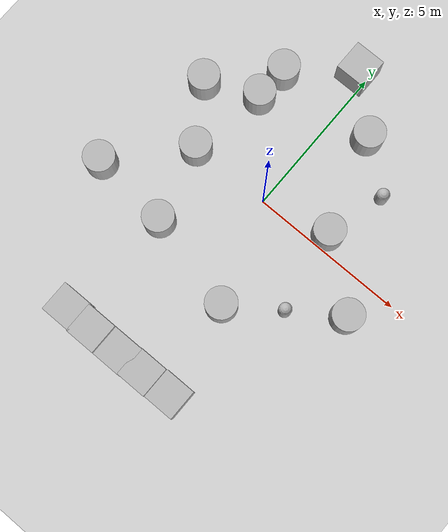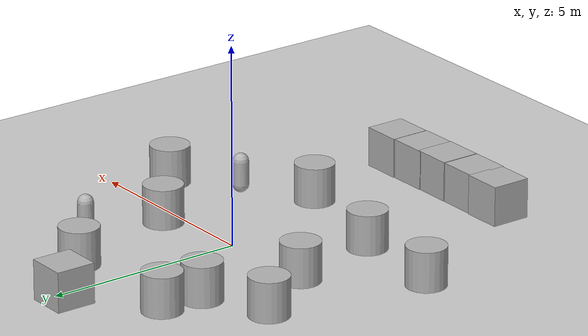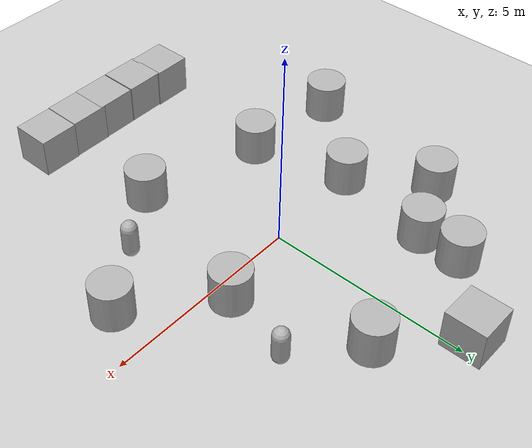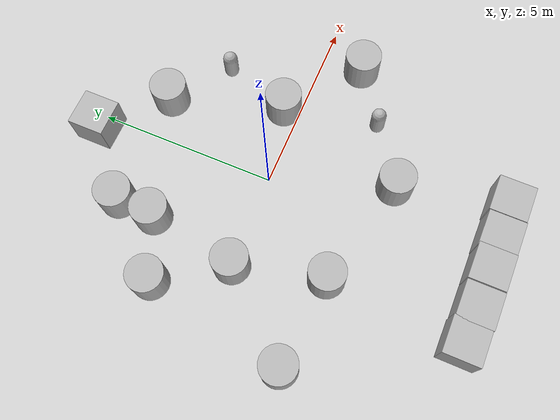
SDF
<sdf version='1.9'>
  <world name='empty'>
    <physics name='1ms' type='ignored'>
      <max_step_size>0.001</max_step_size>
      <real_time_factor>1</real_time_factor>
      <real_time_update_rate>1000</real_time_update_rate>
    </physics>
    <plugin name='gz::sim::systems::Physics' filename='ignition-gazebo-physics-system'/>
    <plugin name='gz::sim::systems::UserCommands' filename='ignition-gazebo-user-commands-system'/>
    <plugin name='gz::sim::systems::SceneBroadcaster' filename='ignition-gazebo-scene-broadcaster-system'/>
    <plugin name='gz::sim::systems::Contact' filename='ignition-gazebo-contact-system'/>
    <gravity>0 0 -9.8</gravity>
    <magnetic_field>6e-06 2.3e-05 -4.2e-05</magnetic_field>
    <atmosphere type='adiabatic'/>
    <scene>
      <ambient>0.4 0.4 0.4 1</ambient>
      <background>0.7 0.7 0.7 1</background>
      <shadows>true</shadows>
    </scene>
    <plugin filename="libignition-gazebo-sensors-system.so"
        name="ignition::gazebo::systems::Sensors">
  <render_engine>ogre2</render_engine>
</plugin>
    <model name='ground_plane'>
      <static>true</static>
      <link name='link'>
        <collision name='collision'>
          <geometry>
            <plane>
              <normal>0 0 1</normal>
              <size>100 100</size>
            </plane>
          </geometry>
          <surface>
            <friction>
              <ode/>
            </friction>
            <bounce/>
            <contact/>
          </surface>
        </collision>
        <visual name='visual'>
          <geometry>
            <plane>
              <normal>0 0 1</normal>
              <size>100 100</size>
            </plane>
          </geometry>
          <material>
            <ambient>0.8 0.8 0.8 1</ambient>
            <diffuse>0.8 0.8 0.8 1</diffuse>
            <specular>0.8 0.8 0.8 1</specular>
          </material>
        </visual>
        <pose>0 0 0 0 -0 0</pose>
        <inertial>
          <pose>0 0 0 0 -0 0</pose>
          <mass>1</mass>
          <inertia>
            <ixx>1</ixx>
            <ixy>0</ixy>
            <ixz>0</ixz>
            <iyy>1</iyy>
            <iyz>0</iyz>
            <izz>1</izz>
          </inertia>
        </inertial>
        <enable_wind>false</enable_wind>
      </link>
      <pose>0 0 0 0 -0 0</pose>
      <self_collide>false</self_collide>
    </model>
    <model name='cylinder'>
      <pose>1.19054 3.52569 0.5 0 -0 0</pose>
      <link name='cylinder_link'>
        <inertial>
          <inertia>
            <ixx>0.14580000000000001</ixx>
            <ixy>0</ixy>
            <ixz>0</ixz>
            <iyy>0.14580000000000001</iyy>
            <iyz>0</iyz>
            <izz>0.125</izz>
          </inertia>
          <mass>1</mass>
          <pose>0 0 0 0 -0 0</pose>
        </inertial>
        <collision name='cylinder_collision'>
          <geometry>
            <cylinder>
              <radius>0.5</radius>
              <length>1</length>
            </cylinder>
          </geometry>
          <surface>
            <friction>
              <ode/>
            </friction>
            <bounce/>
            <contact/>
          </surface>
        </collision>
        <visual name='cylinder_visual'>
          <geometry>
            <cylinder>
              <radius>0.5</radius>
              <length>1</length>
            </cylinder>
          </geometry>
          <material>
            <ambient>0.3 0.3 0.3 1</ambient>
            <diffuse>0.7 0.7 0.7 1</diffuse>
            <specular>1 1 1 1</specular>
          </material>
        </visual>
        <pose>0 0 0 0 -0 0</pose>
        <enable_wind>false</enable_wind>
      </link>
      <static>false</static>
      <self_collide>false</self_collide>
    </model>
    <model name='cylinder_0'>
      <pose>2.14112 0.465666 0.5 0 -0 0</pose>
      <link name='cylinder_link'>
        <inertial>
          <inertia>
            <ixx>0.14580000000000001</ixx>
            <ixy>0</ixy>
            <ixz>0</ixz>
            <iyy>0.14580000000000001</iyy>
            <iyz>0</iyz>
            <izz>0.125</izz>
          </inertia>
          <mass>1</mass>
          <pose>0 0 0 0 -0 0</pose>
        </inertial>
        <collision name='cylinder_collision'>
          <geometry>
            <cylinder>
              <radius>0.5</radius>
              <length>1</length>
            </cylinder>
          </geometry>
          <surface>
            <friction>
              <ode/>
            </friction>
            <bounce/>
            <contact/>
          </surface>
        </collision>
        <visual name='cylinder_visual'>
          <geometry>
            <cylinder>
              <radius>0.5</radius>
              <length>1</length>
            </cylinder>
          </geometry>
          <material>
            <ambient>0.3 0.3 0.3 1</ambient>
            <diffuse>0.7 0.7 0.7 1</diffuse>
            <specular>1 1 1 1</specular>
          </material>
        </visual>
        <pose>0 0 0 0 -0 0</pose>
        <enable_wind>false</enable_wind>
      </link>
      <static>false</static>
      <self_collide>false</self_collide>
    </model>
    <model name='cylinder_1'>
      <pose>1.09367 -3.24266 0.5 0 -0 0</pose>
      <link name='cylinder_link'>
        <inertial>
          <inertia>
            <ixx>0.14580000000000001</ixx>
            <ixy>0</ixy>
            <ixz>0</ixz>
            <iyy>0.14580000000000001</iyy>
            <iyz>0</iyz>
            <izz>0.125</izz>
          </inertia>
          <mass>1</mass>
          <pose>0 0 0 0 -0 0</pose>
        </inertial>
        <collision name='cylinder_collision'>
          <geometry>
            <cylinder>
              <radius>0.5</radius>
              <length>1</length>
            </cylinder>
          </geometry>
          <surface>
            <friction>
              <ode/>
            </friction>
            <bounce/>
            <contact/>
          </surface>
        </collision>
        <visual name='cylinder_visual'>
          <geometry>
            <cylinder>
              <radius>0.5</radius>
              <length>1</length>
            </cylinder>
          </geometry>
          <material>
            <ambient>0.3 0.3 0.3 1</ambient>
            <diffuse>0.7 0.7 0.7 1</diffuse>
            <specular>1 1 1 1</specular>
          </material>
        </visual>
        <pose>0 0 0 0 -0 0</pose>
        <enable_wind>false</enable_wind>
      </link>
      <static>false</static>
      <self_collide>false</self_collide>
    </model>
    <model name='cylinder_2'>
      <pose>-2.16518 2.41707 0.5 0 -0 0</pose>
      <link name='cylinder_link'>
        <inertial>
          <inertia>
            <ixx>0.14580000000000001</ixx>
            <ixy>0</ixy>
            <ixz>0</ixz>
            <iyy>0.14580000000000001</iyy>
            <iyz>0</iyz>
            <izz>0.125</izz>
          </inertia>
          <mass>1</mass>
          <pose>0 0 0 0 -0 0</pose>
        </inertial>
        <collision name='cylinder_collision'>
          <geometry>
            <cylinder>
              <radius>0.5</radius>
              <length>1</length>
            </cylinder>
          </geometry>
          <surface>
            <friction>
              <ode/>
            </friction>
            <bounce/>
            <contact/>
          </surface>
        </collision>
        <visual name='cylinder_visual'>
          <geometry>
            <cylinder>
              <radius>0.5</radius>
              <length>1</length>
            </cylinder>
          </geometry>
          <material>
            <ambient>0.3 0.3 0.3 1</ambient>
            <diffuse>0.7 0.7 0.7 1</diffuse>
            <specular>1 1 1 1</specular>
          </material>
        </visual>
        <pose>0 0 0 0 -0 0</pose>
        <enable_wind>false</enable_wind>
      </link>
      <static>false</static>
      <self_collide>false</self_collide>
    </model>
    <model name='cylinder_3'>
      <pose>-2.58643 -0.070747 0.5 0 -0 0</pose>
      <link name='cylinder_link'>
        <inertial>
          <inertia>
            <ixx>0.14580000000000001</ixx>
            <ixy>0</ixy>
            <ixz>0</ixz>
            <iyy>0.14580000000000001</iyy>
            <iyz>0</iyz>
            <izz>0.125</izz>
          </inertia>
          <mass>1</mass>
          <pose>0 0 0 0 -0 0</pose>
        </inertial>
        <collision name='cylinder_collision'>
          <geometry>
            <cylinder>
              <radius>0.5</radius>
              <length>1</length>
            </cylinder>
          </geometry>
          <surface>
            <friction>
              <ode/>
            </friction>
            <bounce/>
            <contact/>
          </surface>
        </collision>
        <visual name='cylinder_visual'>
          <geometry>
            <cylinder>
              <radius>0.5</radius>
              <length>1</length>
            </cylinder>
          </geometry>
          <material>
            <ambient>0.3 0.3 0.3 1</ambient>
            <diffuse>0.7 0.7 0.7 1</diffuse>
            <specular>1 1 1 1</specular>
          </material>
        </visual>
        <pose>0 0 0 0 -0 0</pose>
        <enable_wind>false</enable_wind>
      </link>
      <static>false</static>
      <self_collide>false</self_collide>
    </model>
    <model name='cylinder_4'>
      <pose>-1.98189 -2.47929 0.5 0 -0 0</pose>
      <link name='cylinder_link'>
        <inertial>
          <inertia>
            <ixx>0.14580000000000001</ixx>
            <ixy>0</ixy>
            <ixz>0</ixz>
            <iyy>0.14580000000000001</iyy>
            <iyz>0</iyz>
            <izz>0.125</izz>
          </inertia>
          <mass>1</mass>
          <pose>0 0 0 0 -0 0</pose>
        </inertial>
        <collision name='cylinder_collision'>
          <geometry>
            <cylinder>
              <radius>0.5</radius>
              <length>1</length>
            </cylinder>
          </geometry>
          <surface>
            <friction>
              <ode/>
            </friction>
            <bounce/>
            <contact/>
          </surface>
        </collision>
        <visual name='cylinder_visual'>
          <geometry>
            <cylinder>
              <radius>0.5</radius>
              <length>1</length>
            </cylinder>
          </geometry>
          <material>
            <ambient>0.3 0.3 0.3 1</ambient>
            <diffuse>0.7 0.7 0.7 1</diffuse>
            <specular>1 1 1 1</specular>
          </material>
        </visual>
        <pose>0 0 0 0 -0 0</pose>
        <enable_wind>false</enable_wind>
      </link>
      <static>false</static>
      <self_collide>false</self_collide>
    </model>
    <model name='box'>
      <pose>1.64385 -6.1858 0.5 0 -0 0</pose>
      <link name='box_link'>
        <inertial>
          <inertia>
            <ixx>0.16666</ixx>
            <ixy>0</ixy>
            <ixz>0</ixz>
            <iyy>0.16666</iyy>
            <iyz>0</iyz>
            <izz>0.16666</izz>
          </inertia>
          <mass>1</mass>
          <pose>0 0 0 0 -0 0</pose>
        </inertial>
        <collision name='box_collision'>
          <geometry>
            <box>
              <size>1 1 1</size>
            </box>
          </geometry>
          <surface>
            <friction>
              <ode/>
            </friction>
            <bounce/>
            <contact/>
          </surface>
        </collision>
        <visual name='box_visual'>
          <geometry>
            <box>
              <size>1 1 1</size>
            </box>
          </geometry>
          <material>
            <ambient>0.3 0.3 0.3 1</ambient>
            <diffuse>0.7 0.7 0.7 1</diffuse>
            <specular>1 1 1 1</specular>
          </material>
        </visual>
        <pose>0 0 0 0 -0 0</pose>
        <enable_wind>false</enable_wind>
      </link>
      <static>false</static>
      <self_collide>false</self_collide>
    </model>
    <model name='box_0'>
      <pose>0.630276 -6.20416 0.5 0 -0 0</pose>
      <link name='box_link'>
        <inertial>
          <inertia>
            <ixx>0.16666</ixx>
            <ixy>0</ixy>
            <ixz>0</ixz>
            <iyy>0.16666</iyy>
            <iyz>0</iyz>
            <izz>0.16666</izz>
          </inertia>
          <mass>1</mass>
          <pose>0 0 0 0 -0 0</pose>
        </inertial>
        <collision name='box_collision'>
          <geometry>
            <box>
              <size>1 1 1</size>
            </box>
          </geometry>
          <surface>
            <friction>
              <ode/>
            </friction>
            <bounce/>
            <contact/>
          </surface>
        </collision>
        <visual name='box_visual'>
          <geometry>
            <box>
              <size>1 1 1</size>
            </box>
          </geometry>
          <material>
            <ambient>0.3 0.3 0.3 1</ambient>
            <diffuse>0.7 0.7 0.7 1</diffuse>
            <specular>1 1 1 1</specular>
          </material>
        </visual>
        <pose>0 0 0 0 -0 0</pose>
        <enable_wind>false</enable_wind>
      </link>
      <static>false</static>
      <self_collide>false</self_collide>
    </model>
    <model name='box_1'>
      <pose>-0.275972 -6.21832 0.5 0 -0 0</pose>
      <link name='box_link'>
        <inertial>
          <inertia>
            <ixx>0.16666</ixx>
            <ixy>0</ixy>
            <ixz>0</ixz>
            <iyy>0.16666</iyy>
            <iyz>0</iyz>
            <izz>0.16666</izz>
          </inertia>
          <mass>1</mass>
          <pose>0 0 0 0 -0 0</pose>
        </inertial>
        <collision name='box_collision'>
          <geometry>
            <box>
              <size>1 1 1</size>
            </box>
          </geometry>
          <surface>
            <friction>
              <ode/>
            </friction>
            <bounce/>
            <contact/>
          </surface>
        </collision>
        <visual name='box_visual'>
          <geometry>
            <box>
              <size>1 1 1</size>
            </box>
          </geometry>
          <material>
            <ambient>0.3 0.3 0.3 1</ambient>
            <diffuse>0.7 0.7 0.7 1</diffuse>
            <specular>1 1 1 1</specular>
          </material>
        </visual>
        <pose>0 0 0 0 -0 0</pose>
        <enable_wind>false</enable_wind>
      </link>
      <static>false</static>
      <self_collide>false</self_collide>
    </model>
    <model name='box_2'>
      <pose>-1.30297 -6.2206 0.5 0 -0 0</pose>
      <link name='box_link'>
        <inertial>
          <inertia>
            <ixx>0.16666</ixx>
            <ixy>0</ixy>
            <ixz>0</ixz>
            <iyy>0.16666</iyy>
            <iyz>0</iyz>
            <izz>0.16666</izz>
          </inertia>
          <mass>1</mass>
          <pose>0 0 0 0 -0 0</pose>
        </inertial>
        <collision name='box_collision'>
          <geometry>
            <box>
              <size>1 1 1</size>
            </box>
          </geometry>
          <surface>
            <friction>
              <ode/>
            </friction>
            <bounce/>
            <contact/>
          </surface>
        </collision>
        <visual name='box_visual'>
          <geometry>
            <box>
              <size>1 1 1</size>
            </box>
          </geometry>
          <material>
            <ambient>0.3 0.3 0.3 1</ambient>
            <diffuse>0.7 0.7 0.7 1</diffuse>
            <specular>1 1 1 1</specular>
          </material>
        </visual>
        <pose>0 0 0 0 -0 0</pose>
        <enable_wind>false</enable_wind>
      </link>
      <static>false</static>
      <self_collide>false</self_collide>
    </model>
    <model name='box_3'>
      <pose>-2.25142 -6.19435 0.5 0 -0 0</pose>
      <link name='box_link'>
        <inertial>
          <inertia>
            <ixx>0.16666</ixx>
            <ixy>0</ixy>
            <ixz>0</ixz>
            <iyy>0.16666</iyy>
            <iyz>0</iyz>
            <izz>0.16666</izz>
          </inertia>
          <mass>1</mass>
          <pose>0 0 0 0 -0 0</pose>
        </inertial>
        <collision name='box_collision'>
          <geometry>
            <box>
              <size>1 1 1</size>
            </box>
          </geometry>
          <surface>
            <friction>
              <ode/>
            </friction>
            <bounce/>
            <contact/>
          </surface>
        </collision>
        <visual name='box_visual'>
          <geometry>
            <box>
              <size>1 1 1</size>
            </box>
          </geometry>
          <material>
            <ambient>0.3 0.3 0.3 1</ambient>
            <diffuse>0.7 0.7 0.7 1</diffuse>
            <specular>1 1 1 1</specular>
          </material>
        </visual>
        <pose>0 0 0 0 -0 0</pose>
        <enable_wind>false</enable_wind>
      </link>
      <static>false</static>
      <self_collide>false</self_collide>
    </model>
    <model name='cylinder_5'>
      <pose>-3.76859 1.70032 0.5 0 -0 0</pose>
      <link name='cylinder_link'>
        <inertial>
          <inertia>
            <ixx>0.14580000000000001</ixx>
            <ixy>0</ixy>
            <ixz>0</ixz>
            <iyy>0.14580000000000001</iyy>
            <iyz>0</iyz>
            <izz>0.125</izz>
          </inertia>
          <mass>1</mass>
          <pose>0 0 0 0 -0 0</pose>
        </inertial>
        <collision name='cylinder_collision'>
          <geometry>
            <cylinder>
              <radius>0.5</radius>
              <length>1</length>
            </cylinder>
          </geometry>
          <surface>
            <friction>
              <ode/>
            </friction>
            <bounce/>
            <contact/>
          </surface>
        </collision>
        <visual name='cylinder_visual'>
          <geometry>
            <cylinder>
              <radius>0.5</radius>
              <length>1</length>
            </cylinder>
          </geometry>
          <material>
            <ambient>0.3 0.3 0.3 1</ambient>
            <diffuse>0.7 0.7 0.7 1</diffuse>
            <specular>1 1 1 1</specular>
          </material>
        </visual>
        <pose>0 0 0 0 -0 0</pose>
        <enable_wind>false</enable_wind>
      </link>
      <static>false</static>
      <self_collide>false</self_collide>
    </model>
    <model name='capsule'>
      <pose>2.62534 -2.16427 0.5 0 -0 0</pose>
      <link name='capsule_link'>
        <inertial>
          <inertia>
            <ixx>0.074153999999999998</ixx>
            <ixy>0</ixy>
            <ixz>0</ixz>
            <iyy>0.074153999999999998</iyy>
            <iyz>0</iyz>
            <izz>0.018769000000000001</izz>
          </inertia>
          <mass>1</mass>
          <pose>0 0 0 0 -0 0</pose>
        </inertial>
        <collision name='capsule_collision'>
          <geometry>
            <capsule>
              <radius>0.20000000000000001</radius>
              <length>0.59999999999999998</length>
            </capsule>
          </geometry>
          <surface>
            <friction>
              <ode/>
            </friction>
            <bounce/>
            <contact/>
          </surface>
        </collision>
        <visual name='capsule_visual'>
          <geometry>
            <capsule>
              <radius>0.20000000000000001</radius>
              <length>0.59999999999999998</length>
            </capsule>
          </geometry>
          <material>
            <ambient>0.3 0.3 0.3 1</ambient>
            <diffuse>0.7 0.7 0.7 1</diffuse>
            <specular>1 1 1 1</specular>
          </material>
        </visual>
        <pose>0 0 0 0 -0 0</pose>
        <enable_wind>false</enable_wind>
      </link>
      <static>false</static>
      <self_collide>false</self_collide>
    </model>
    <model name='cylinder_6'>
      <pose>-2.11195 3.49687 0.5 0 -0 0</pose>
      <link name='cylinder_link'>
        <inertial>
          <inertia>
            <ixx>0.14580000000000001</ixx>
            <ixy>0</ixy>
            <ixz>0</ixz>
            <iyy>0.14580000000000001</iyy>
            <iyz>0</iyz>
            <izz>0.125</izz>
          </inertia>
          <mass>1</mass>
          <pose>0 0 0 0 -0 0</pose>
        </inertial>
        <collision name='cylinder_collision'>
          <geometry>
            <cylinder>
              <radius>0.5</radius>
              <length>1</length>
            </cylinder>
          </geometry>
          <surface>
            <friction>
              <ode/>
            </friction>
            <bounce/>
            <contact/>
          </surface>
        </collision>
        <visual name='cylinder_visual'>
          <geometry>
            <cylinder>
              <radius>0.5</radius>
              <length>1</length>
            </cylinder>
          </geometry>
          <material>
            <ambient>0.3 0.3 0.3 1</ambient>
            <diffuse>0.7 0.7 0.7 1</diffuse>
            <specular>1 1 1 1</specular>
          </material>
        </visual>
        <pose>0 0 0 0 -0 0</pose>
        <enable_wind>false</enable_wind>
      </link>
      <static>false</static>
      <self_collide>false</self_collide>
    </model>
    <model name='box_4'>
      <pose>-0.347718 4.98782 0.5 0 -0 0</pose>
      <link name='box_link'>
        <inertial>
          <inertia>
            <ixx>0.16666</ixx>
            <ixy>0</ixy>
            <ixz>0</ixz>
            <iyy>0.16666</iyy>
            <iyz>0</iyz>
            <izz>0.16666</izz>
          </inertia>
          <mass>1</mass>
          <pose>0 0 0 0 -0 0</pose>
        </inertial>
        <collision name='box_collision'>
          <geometry>
            <box>
              <size>1 1 1</size>
            </box>
          </geometry>
          <surface>
            <friction>
              <ode/>
            </friction>
            <bounce/>
            <contact/>
          </surface>
        </collision>
        <visual name='box_visual'>
          <geometry>
            <box>
              <size>1 1 1</size>
            </box>
          </geometry>
          <material>
            <ambient>0.3 0.3 0.3 1</ambient>
            <diffuse>0.7 0.7 0.7 1</diffuse>
            <specular>1 1 1 1</specular>
          </material>
        </visual>
        <pose>0 0 0 0 -0 0</pose>
        <enable_wind>false</enable_wind>
      </link>
      <static>false</static>
      <self_collide>false</self_collide>
    </model>
    <model name='capsule_0'>
      <pose>2.68352 2.32671 0.5 0 -0 0</pose>
      <link name='capsule_link'>
        <inertial>
          <inertia>
            <ixx>0.074153999999999998</ixx>
            <ixy>0</ixy>
            <ixz>0</ixz>
            <iyy>0.074153999999999998</iyy>
            <iyz>0</iyz>
            <izz>0.018769000000000001</izz>
          </inertia>
          <mass>1</mass>
          <pose>0 0 0 0 -0 0</pose>
        </inertial>
        <collision name='capsule_collision'>
          <geometry>
            <capsule>
              <radius>0.20000000000000001</radius>
              <length>0.59999999999999998</length>
            </capsule>
          </geometry>
          <surface>
            <friction>
              <ode/>
            </friction>
            <bounce/>
            <contact/>
          </surface>
        </collision>
        <visual name='capsule_visual'>
          <geometry>
            <capsule>
              <radius>0.20000000000000001</radius>
              <length>0.59999999999999998</length>
            </capsule>
          </geometry>
          <material>
            <ambient>0.3 0.3 0.3 1</ambient>
            <diffuse>0.7 0.7 0.7 1</diffuse>
            <specular>1 1 1 1</specular>
          </material>
        </visual>
        <pose>0 0 0 0 -0 0</pose>
        <enable_wind>false</enable_wind>
      </link>
      <static>false</static>
      <self_collide>false</self_collide>
    </model>
    <model name='cylinder_7'>
      <pose>4.12942 -1.13341 0.5 0 -0 0</pose>
      <link name='cylinder_link'>
        <inertial>
          <inertia>
            <ixx>0.14580000000000001</ixx>
            <ixy>0</ixy>
            <ixz>0</ixz>
            <iyy>0.14580000000000001</iyy>
            <iyz>0</iyz>
            <izz>0.125</izz>
          </inertia>
          <mass>1</mass>
          <pose>0 0 0 0 -0 0</pose>
        </inertial>
        <collision name='cylinder_collision'>
          <geometry>
            <cylinder>
              <radius>0.5</radius>
              <length>1</length>
            </cylinder>
          </geometry>
          <surface>
            <friction>
              <ode/>
            </friction>
            <bounce/>
            <contact/>
          </surface>
        </collision>
        <visual name='cylinder_visual'>
          <geometry>
            <cylinder>
              <radius>0.5</radius>
              <length>1</length>
            </cylinder>
          </geometry>
          <material>
            <ambient>0.3 0.3 0.3 1</ambient>
            <diffuse>0.7 0.7 0.7 1</diffuse>
            <specular>1 1 1 1</specular>
          </material>
        </visual>
        <pose>0 0 0 0 -0 0</pose>
        <enable_wind>false</enable_wind>
      </link>
      <static>false</static>
      <self_collide>false</self_collide>
    </model>
    <model name='cylinder_8'>
      <pose>-4.5152 -2.23824 0.5 0 -0 0</pose>
      <link name='cylinder_link'>
        <inertial>
          <inertia>
            <ixx>0.14580000000000001</ixx>
            <ixy>0</ixy>
            <ixz>0</ixz>
            <iyy>0.14580000000000001</iyy>
            <iyz>0</iyz>
            <izz>0.125</izz>
          </inertia>
          <mass>1</mass>
          <pose>0 0 0 0 -0 0</pose>
        </inertial>
        <collision name='cylinder_collision'>
          <geometry>
            <cylinder>
              <radius>0.5</radius>
              <length>1</length>
            </cylinder>
          </geometry>
          <surface>
            <friction>
              <ode/>
            </friction>
            <bounce/>
            <contact/>
          </surface>
        </collision>
        <visual name='cylinder_visual'>
          <geometry>
            <cylinder>
              <radius>0.5</radius>
              <length>1</length>
            </cylinder>
          </geometry>
          <material>
            <ambient>0.3 0.3 0.3 1</ambient>
            <diffuse>0.7 0.7 0.7 1</diffuse>
            <specular>1 1 1 1</specular>
          </material>
        </visual>
        <pose>0 0 0 0 -0 0</pose>
        <enable_wind>false</enable_wind>
      </link>
      <static>false</static>
      <self_collide>false</self_collide>
    </model>
    <light name='sun' type='directional'>
      <pose>0 0 10 0 -0 0</pose>
      <cast_shadows>true</cast_shadows>
      <intensity>1</intensity>
      <direction>-0.5 0.1 -0.9</direction>
      <diffuse>0.8 0.8 0.8 1</diffuse>
      <specular>0.2 0.2 0.2 1</specular>
      <attenuation>
        <range>1000</range>
        <linear>0.01</linear>
        <constant>0.90000000000000002</constant>
        <quadratic>0.001</quadratic>
      </attenuation>
      <spot>
        <inner_angle>0</inner_angle>
        <outer_angle>0</outer_angle>
        <falloff>0</falloff>
      </spot>
    </light>
  </world>
</sdf>
